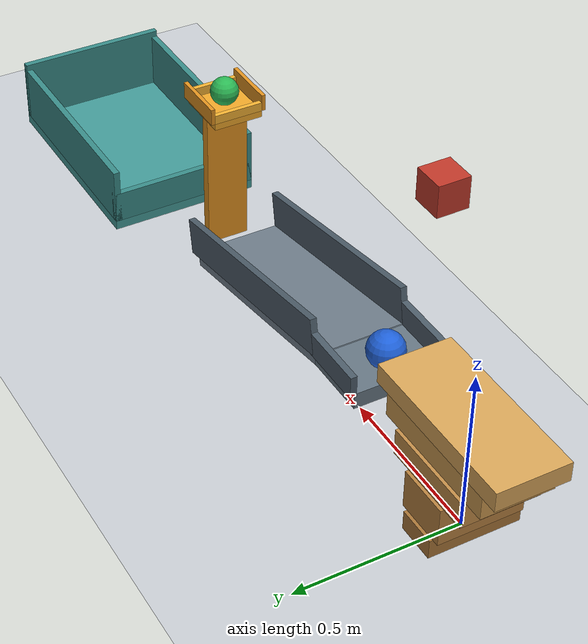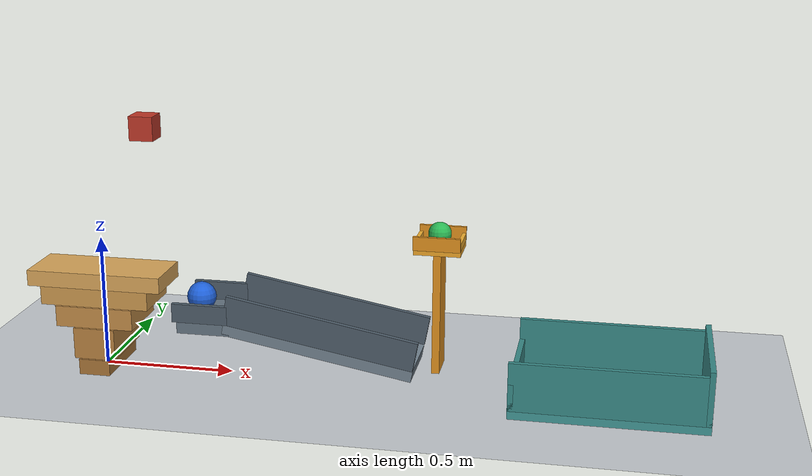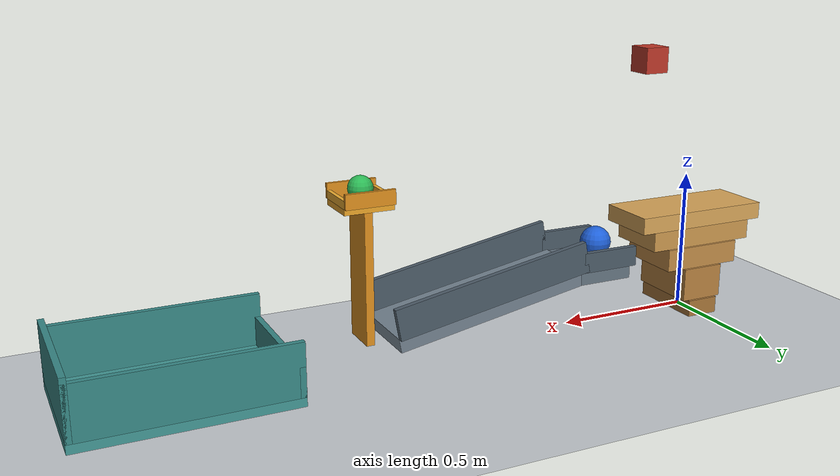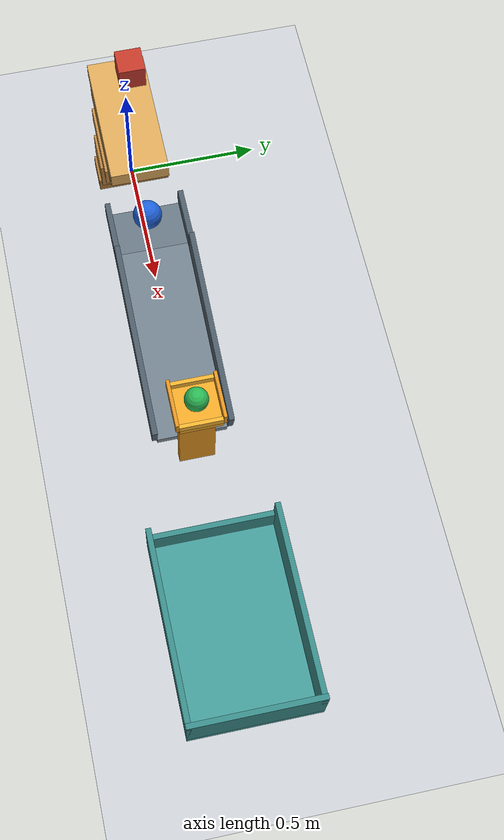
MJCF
<mujoco model="passive_wedge_ball_flap_chain">
  <compiler angle="radian" autolimits="true"/>
  <option timestep="0.002" gravity="0 0 -9.81" integrator="implicitfast" iterations="80"/>
  <size njmax="1000" nconmax="300"/>
  <visual>
    <headlight ambient="0.4 0.4 0.4" diffuse="0.7 0.7 0.7" specular="0.2 0.2 0.2"/>
  </visual>

  <worldbody>
    <light name="overhead" pos="0.8 -1.5 3" dir="0 0 -1"/>
    <camera name="overview" pos="1 -3 1.7" xyaxes="1 0 0 0 0.45 0.893"/>

    <geom name="floor" type="plane" size="4 3 0.1" friction="0.75 0.01 0.003" condim="6" rgba="0.78 0.80 0.82 1"/>

    <!-- The block's bottom starts exactly 0.5 m above the wedge's cap. -->
    <body name="block" pos="0.195 0 0.935">
      <freejoint name="block_free"/>
      <geom name="block_weight" type="box" size="0.045 0.045 0.045" mass="0.45" friction="0.65 0.01 0.001" solref="0.01 1" rgba="0.75 0.22 0.16 1"/>
    </body>

    <!-- A stepped, inverted wedge has a narrow stable footing and broad shoulders. -->
    <body name="wedge" pos="0 0 0">
      <freejoint name="wedge_free"/>
      <geom name="wedge_foot" type="box" pos="0 0 0.03" size="0.06 0.14 0.03" mass="0.25" friction="0.65 0.01 0.001" solref="0.01 1" rgba="0.66 0.46 0.22 1"/>
      <geom name="wedge_lower" type="box" pos="0 0 0.12" size="0.08 0.13 0.06" mass="0.15" friction="0.65 0.01 0.001" solref="0.01 1" rgba="0.72 0.51 0.25 1"/>
      <geom name="wedge_middle" type="box" pos="0 0 0.22" size="0.15 0.12 0.04" mass="0.15" friction="0.65 0.01 0.001" solref="0.01 1" rgba="0.76 0.55 0.28 1"/>
      <geom name="wedge_upper" type="box" pos="0 0 0.295" size="0.21 0.11 0.035" mass="0.15" friction="0.65 0.01 0.001" solref="0.01 1" rgba="0.80 0.60 0.31 1"/>
      <geom name="wedge_cap" type="box" pos="0 0 0.36" size="0.26 0.11 0.03" mass="0.20" friction="0.65 0.01 0.001" solref="0.01 1" rgba="0.85 0.65 0.35 1"/>
    </body>

    <body name="ball1" pos="0.39 0 0.2955">
      <freejoint name="ball1_free"/>
      <geom name="ball1_sphere" type="sphere" size="0.055" mass="0.20" friction="0.5 0.005 0.0001" condim="6" solref="0.01 1" rgba="0.12 0.38 0.85 1"/>
    </body>

    <!-- A level starting terrace prevents ball1 from moving before the wedge hits it. -->
    <body name="ramp" pos="0 0 0">
      <geom name="ramp_terrace" type="box" pos="0.43 0 0.215" size="0.10 0.13 0.025" friction="0.55 0.005 0.0001" condim="6" rgba="0.40 0.46 0.51 1"/>
      <geom name="ramp_slope" type="box" pos="0.86 0 0.15365" euler="0 0.18257 0" size="0.36 0.13 0.025" friction="0.55 0.005 0.0001" condim="6" rgba="0.45 0.51 0.56 1"/>
      <geom name="ramp_terrace_left_rail" type="box" pos="0.425 0.14 0.275" size="0.105 0.01 0.035" friction="0.4 0.005 0.0001" rgba="0.30 0.36 0.41 1"/>
      <geom name="ramp_terrace_right_rail" type="box" pos="0.425 -0.14 0.275" size="0.105 0.01 0.035" friction="0.4 0.005 0.0001" rgba="0.30 0.36 0.41 1"/>
      <geom name="ramp_slope_left_rail" type="box" pos="0.87452 0.14 0.23232" euler="0 0.18257 0" size="0.36 0.01 0.055" friction="0.4 0.005 0.0001" rgba="0.30 0.36 0.41 1"/>
      <geom name="ramp_slope_right_rail" type="box" pos="0.87452 -0.14 0.23232" euler="0 0.18257 0" size="0.36 0.01 0.055" friction="0.4 0.005 0.0001" rgba="0.30 0.36 0.41 1"/>
    </body>

    <body name="flap" pos="1.29 0 0.08">
      <joint name="flap_hinge" type="hinge" pos="0 0 0" axis="0 1 0" range="0 1.308996939" limited="true" damping="0.03" frictionloss="0.015" armature="0.001" solreflimit="0.006 1"/>
      <geom name="flap_striker" type="box" pos="0 0 0.225" size="0.014 0.065 0.225" mass="0.14" friction="0.5 0.005 0.0001" solref="0.01 1" rgba="0.88 0.57 0.12 1"/>
      <geom name="flap_tray" type="box" pos="0 0 0.46" size="0.085 0.075 0.01" mass="0.06" friction="0.55 0.005 0.0003" condim="6" solref="0.01 1" rgba="0.93 0.65 0.16 1"/>
      <geom name="flap_release_lip" type="box" pos="0.078 0 0.4835" size="0.007 0.075 0.0135" mass="0.007" friction="0.55 0.005 0.0003" condim="6" solref="0.01 1" rgba="0.95 0.69 0.19 1"/>
      <geom name="flap_rear_lip" type="box" pos="-0.078 0 0.4835" size="0.007 0.075 0.0135" mass="0.007" friction="0.55 0.005 0.0003" condim="6" solref="0.01 1" rgba="0.95 0.69 0.19 1"/>
      <geom name="flap_left_guide" type="box" pos="0 0.081 0.495" size="0.085 0.006 0.025" mass="0.006" friction="0.4 0.005 0.0003" rgba="0.88 0.57 0.12 1"/>
      <geom name="flap_right_guide" type="box" pos="0 -0.081 0.495" size="0.085 0.006 0.025" mass="0.006" friction="0.4 0.005 0.0003" rgba="0.88 0.57 0.12 1"/>
    </body>

    <body name="ball2" pos="1.29 0 0.5925">
      <freejoint name="ball2_free"/>
      <geom name="ball2_sphere" type="sphere" size="0.042" mass="0.06" friction="0.55 0.01 0.0003" condim="6" solref="0.01 1" rgba="0.17 0.72 0.33 1"/>
    </body>

    <!-- The low entrance wall clears the flap throughout its downward swing. -->
    <body name="cup" pos="0 0 0">
      <geom name="cup_bottom" type="box" pos="1.92 0 0.015" size="0.35 0.24 0.015" friction="0.9 0.03 0.005" condim="6" solref="0.01 1" rgba="0.26 0.60 0.59 1"/>
      <geom name="cup_entrance_wall" type="box" pos="1.58 0 0.08" size="0.01 0.24 0.05" friction="0.9 0.03 0.005" condim="6" solref="0.01 1" rgba="0.22 0.54 0.53 1"/>
      <geom name="cup_far_wall" type="box" pos="2.26 0 0.13" size="0.01 0.24 0.10" friction="0.9 0.03 0.005" condim="6" solref="0.01 1" rgba="0.22 0.54 0.53 1"/>
      <geom name="cup_left_wall" type="box" pos="1.92 0.23 0.12" size="0.35 0.01 0.09" friction="0.9 0.03 0.005" condim="6" solref="0.01 1" rgba="0.22 0.54 0.53 1"/>
      <geom name="cup_right_wall" type="box" pos="1.92 -0.23 0.12" size="0.35 0.01 0.09" friction="0.9 0.03 0.005" condim="6" solref="0.01 1" rgba="0.22 0.54 0.53 1"/>
    </body>
  </worldbody>

  <keyframe>
    <key name="start" qpos="0.195 0 0.935 1 0 0 0 0 0 0 1 0 0 0 0.39 0 0.2955 1 0 0 0 0 1.29 0 0.5925 1 0 0 0"/>
  </keyframe>
</mujoco>
